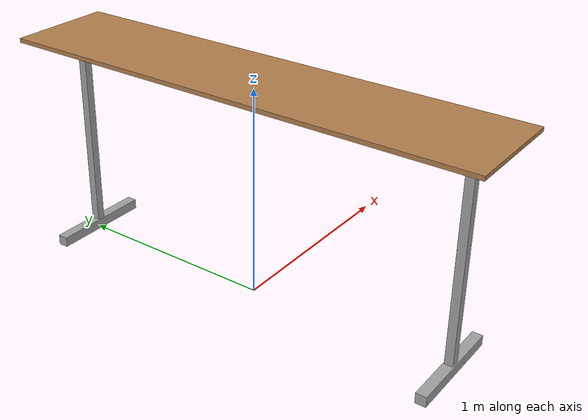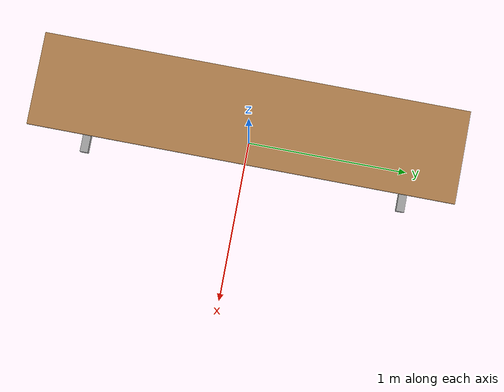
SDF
<?xml version="1.0" ?>
<sdf version="1.4">
    <model name='high_table'>
      <link name='link'>
        <pose>0.0 0.0 0.0 0 0 0</pose>
        <inertial>
          <mass>10.0</mass>
          <inertia>
            <ixx>1</ixx>
            <ixy>0</ixy>
            <ixz>0</ixz>
            <iyy>1</iyy>
            <iyz>0</iyz>
            <izz>1</izz>
          </inertia>
        </inertial>
        <visual name='top_board'>
          <pose>0 0 1.04 0 0 0</pose>
          <geometry>
            <box>
              <size>0.5 2.3 0.02</size>
            </box>
          </geometry>
          <material>
            <script>
              <uri>model://base_materials/wood/scripts/wood.material</uri>
              <name>base_materials/dark_wood</name>
            </script>
          </material>
        </visual>
        <collision name='collision_top_board'>
          <pose>0 0 1.04 0 0 0</pose>
          <geometry>
            <box>
              <size>0.5 2.3 0.02</size>
            </box>
          </geometry>
          <max_contacts>10</max_contacts>
          <surface>
            <bounce/>
            <friction>
              <ode/>
            </friction>
            <contact>
              <ode/>
            </contact>
          </surface>
        </collision>
        <visual name='left_poll'>
          <pose>0 1.00 0 0 0 0</pose>
          <geometry>
            <mesh>
              <uri>model://high_table/meshes/poll.dae</uri>
            </mesh>
          </geometry>
          <material>
          </material>
        </visual>
        <collision name='collision_left_poll'>
          <pose>0 1.00 0 0 0 0</pose>
          <geometry>
            <mesh>
              <uri>model://high_table/meshes/poll.dae</uri>
            </mesh>
          </geometry>
          <max_contacts>10</max_contacts>
          <surface>
            <bounce/>
            <friction>
              <ode/>
            </friction>
            <contact>
              <ode/>
            </contact>
          </surface>
        </collision>
        <visual name='right_poll'>
          <pose>0 -1.00 0 0 0 0</pose>
          <geometry>
            <mesh>
              <uri>model://high_table/meshes/poll.dae</uri>
            </mesh>
          </geometry>
          <material>
          </material>
        </visual>
        <collision name='collision_right_poll'>
          <pose>0 -1.00 0 0 0 0</pose>
          <geometry>
            <mesh>
              <uri>model://high_table/meshes/poll.dae</uri>
            </mesh>
          </geometry>
          <max_contacts>10</max_contacts>
          <surface>
            <bounce/>
            <friction>
              <ode/>
            </friction>
            <contact>
              <ode/>
            </contact>
          </surface>
        </collision>
        <velocity_decay>
          <linear>0</linear>
          <angular>0</angular>
        </velocity_decay>
        <self_collide>0</self_collide>
        <kinematic>0</kinematic>
        <gravity>1</gravity>
      </link>
      <static>1</static>
    </model>
</sdf>
